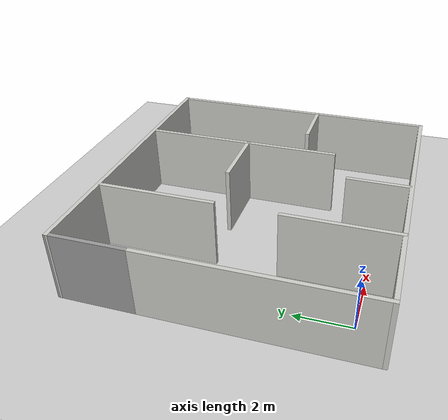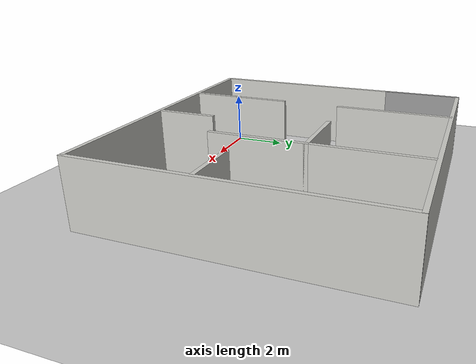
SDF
<sdf version="1.6">
 <world name="default">
  <light name="sun" type="directional">
   <pose>0 0 10 0 -0 0</pose>
   <diffuse>0.8 0.8 0.8 1</diffuse>
   <specular>0.2 0.2 0.2 1</specular>
   <attenuation>
    <range>1000</range>
    <constant>0.9</constant>
    <linear>0.01</linear>
    <quadratic>0.001</quadratic>
   </attenuation>
   <direction>-0.5 0.1 -0.9</direction>
  </light>
  <model name="ground_plane">
   <static>1</static>
   <link name="link">
    <collision name="collision">
     <geometry><plane><normal>0 0 1</normal><size>100 100</size></plane></geometry>
     <surface><friction><ode><mu>100</mu><mu2>50</mu2></ode></friction></surface>
    </collision>
    <visual name="visual">
     <cast_shadows>0</cast_shadows>
     <geometry><plane><normal>0 0 1</normal><size>100 100</size></plane></geometry>
     <material>
      <script><uri>file://media/materials/scripts/gazebo.material</uri><name>Gazebo/Grey</name></script>
     </material>
    </visual>
   </link>
  </model>
  <gravity>0 0 -9.8</gravity>
  <magnetic_field>6e-06 2.3e-05 -4.2e-05</magnetic_field>
  <atmosphere type="adiabatic"/>
  <physics name="default_physics" default="0" type="ode">
   <max_step_size>0.001</max_step_size>
   <real_time_factor>1</real_time_factor>
   <real_time_update_rate>1000</real_time_update_rate>
  </physics>
  <scene><ambient>0.4 0.4 0.4 1</ambient><background>0.7 0.7 0.7 1</background><shadows>1</shadows></scene>
  <audio><device>default</device></audio>
  <spherical_coordinates>
   <surface_model>EARTH_WGS84</surface_model>
   <latitude_deg>0</latitude_deg>
   <longitude_deg>0</longitude_deg>
   <elevation>0</elevation>
   <heading_deg>0</heading_deg>
  </spherical_coordinates>
  <model name="maze_map">
   <pose>4.15971 4.15583 0 0 -0 0</pose>
   <link name="Wall_73">
    <collision name="Wall_73_Collision">
     <geometry><box><size>7.75 0.15 2.5</size></box></geometry>
     <pose>0 0 1.25 0 -0 0</pose>
    </collision>
    <visual name="Wall_73_Visual">
     <pose>0 0 1.25 0 -0 0</pose>
     <geometry><box><size>7.75 0.15 2.5</size></box></geometry>
     <material>
      <script><uri>file://media/materials/scripts/gazebo.material</uri><name>Gazebo/CeilingTiled</name></script>
      <ambient>1 1 1 1</ambient>
     </material>
     <meta><layer>0</layer></meta>
    </visual>
    <pose>-5.39936 -1.37511 0 0 -0 1.5708</pose>
   </link>
   <link name="Wall_75">
    <collision name="Wall_75_Collision">
     <geometry><box><size>10.9263 0.15 2.5</size></box></geometry>
     <pose>0 0 1.25 0 -0 0</pose>
    </collision>
    <visual name="Wall_75_Visual">
     <pose>0 0 1.25 0 -0 0</pose>
     <geometry><box><size>10.9263 0.15 2.5</size></box></geometry>
     <material>
      <script><uri>file://media/materials/scripts/gazebo.material</uri><name>Gazebo/CeilingTiled</name></script>
      <ambient>1 1 1 1</ambient>
     </material>
     <meta><layer>0</layer></meta>
    </visual>
    <pose>-0.011229 -5.17416 0 0 -0 0.000176</pose>
   </link>
   <link name="Wall_76">
    <collision name="Wall_76_Collision">
     <geometry><box><size>10.4655 0.15 2.5</size></box></geometry>
     <pose>0 0 1.25 0 -0 0</pose>
    </collision>
    <visual name="Wall_76_Visual">
     <pose>0 0 1.25 0 -0 0</pose>
     <geometry><box><size>10.4655 0.15 2.5</size></box></geometry>
     <material>
      <script><uri>file://media/materials/scripts/gazebo.material</uri><name>Gazebo/CeilingTiled</name></script>
      <ambient>1 1 1 1</ambient>
     </material>
     <meta><layer>0</layer></meta>
    </visual>
    <pose>5.39959 -0.015463 0 0 -0 1.5708</pose>
   </link>
   <link name="Wall_78">
    <collision name="Wall_78_Collision">
     <geometry><box><size>10.9263 0.15 2.5</size></box></geometry>
     <pose>0 0 1.25 0 -0 0</pose>
    </collision>
    <visual name="Wall_78_Visual">
     <pose>0 0 1.25 0 -0 0</pose>
     <geometry><box><size>10.9263 0.15 2.5</size></box></geometry>
     <material>
      <script><uri>file://media/materials/scripts/gazebo.material</uri><name>Gazebo/CeilingTiled</name></script>
      <ambient>1 1 1 1</ambient>
     </material>
     <meta><layer>0</layer></meta>
    </visual>
    <pose>-0.011229 5.15859 0 0 -0 3.13857</pose>
   </link>
   <link name="Wall_79">
    <collision name="Wall_79_Collision">
     <geometry><box><size>3 0.15 2.5</size></box></geometry>
     <pose>0 0 1.25 0 -0 0</pose>
    </collision>
    <visual name="Wall_79_Visual">
     <pose>0 0 1.25 0 -0 0</pose>
     <geometry><box><size>3 0.15 2.5</size></box></geometry>
     <material>
      <script><uri>file://media/materials/scripts/gazebo.material</uri><name>Gazebo/Grey</name></script>
      <ambient>1 1 1 1</ambient>
     </material>
     <meta><layer>0</layer></meta>
    </visual>
    <pose>-5.39936 3.74989 0 0 -0 -1.5708</pose>
   </link>
   <link name="Wall_81">
    <collision name="Wall_81_Collision">
     <geometry><box><size>4 0.15 2.5</size></box></geometry>
     <pose>0 0 1.25 0 -0 0</pose>
    </collision>
    <visual name="Wall_81_Visual">
     <pose>0 0 1.25 0 -0 0</pose>
     <geometry><box><size>4 0.15 2.5</size></box></geometry>
     <material>
      <script><uri>file://media/materials/scripts/gazebo.material</uri><name>Gazebo/CeilingTiled</name></script>
      <ambient>1 1 1 1</ambient>
     </material>
     <meta><layer>0</layer></meta>
    </visual>
    <pose>-2.40145 -3.23008 0 0 -0 1.5708</pose>
   </link>
   <link name="Wall_84">
    <collision name="Wall_84_Collision">
     <geometry><box><size>4.25 0.15 2.5</size></box></geometry>
     <pose>0 0 1.25 0 -0 0</pose>
    </collision>
    <visual name="Wall_84_Visual">
     <pose>0 0 1.25 0 -0 0</pose>
     <geometry><box><size>4.25 0.15 2.5</size></box></geometry>
     <material>
      <script><uri>file://media/materials/scripts/gazebo.material</uri><name>Gazebo/CeilingTiled</name></script>
      <ambient>1 1 1 1</ambient>
     </material>
     <meta><layer>0</layer></meta>
    </visual>
    <pose>-2.36994 3.05976 0 0 -0 -1.5708</pose>
   </link>
   <link name="Wall_86">
    <collision name="Wall_86_Collision">
     <geometry><box><size>2.5 0.15 2.5</size></box></geometry>
     <pose>0 0 1.25 0 -0 0</pose>
    </collision>
    <visual name="Wall_86_Visual">
     <pose>0 0 1.25 0 -0 0</pose>
     <geometry><box><size>2.5 0.15 2.5</size></box></geometry>
     <material>
      <script><uri>file://media/materials/scripts/gazebo.material</uri><name>Gazebo/CeilingTiled</name></script>
      <ambient>1 1 1 1</ambient>
     </material>
     <meta><layer>0</layer></meta>
    </visual>
    <pose>0.830543 1.17305 0 0 -0 0</pose>
   </link>
   <link name="Wall_87">
    <collision name="Wall_87_Collision">
     <geometry><box><size>4 0.15 2.5</size></box></geometry>
     <pose>0 0 1.25 0 -0 0</pose>
    </collision>
    <visual name="Wall_87_Visual">
     <pose>0 0 1.25 0 -0 0</pose>
     <geometry><box><size>4 0.15 2.5</size></box></geometry>
     <material>
      <script><uri>file://media/materials/scripts/gazebo.material</uri><name>Gazebo/CeilingTiled</name></script>
      <ambient>1 1 1 1</ambient>
     </material>
     <meta><layer>0</layer></meta>
    </visual>
    <pose>2.00554 3.09806 0 0 -0 1.5708</pose>
   </link>
   <link name="Wall_93">
    <collision name="Wall_93_Collision">
     <geometry><box><size>3.5 0.15 2.5</size></box></geometry>
     <pose>0 0 1.25 0 -0 0</pose>
    </collision>
    <visual name="Wall_93_Visual">
     <pose>0 0 1.25 0 -0 0</pose>
     <geometry><box><size>3.5 0.15 2.5</size></box></geometry>
     <material>
      <script><uri>file://media/materials/scripts/gazebo.material</uri><name>Gazebo/CeilingTiled</name></script>
      <ambient>1 1 1 1</ambient>
     </material>
     <meta><layer>0</layer></meta>
    </visual>
    <pose>2.00554 -0.501945 0 0 -0 -1.5708</pose>
   </link>
   <link name="Wall_95">
    <collision name="Wall_95_Collision">
     <geometry><box><size>2.25 0.15 2.5</size></box></geometry>
     <pose>0 0 1.25 0 -0 0</pose>
    </collision>
    <visual name="Wall_95_Visual">
     <pose>0 0 1.25 0 -0 0</pose>
     <geometry><box><size>2.25 0.15 2.5</size></box></geometry>
     <material>
      <script><uri>file://media/materials/scripts/gazebo.material</uri><name>Gazebo/CeilingTiled</name></script>
      <ambient>1 1 1 1</ambient>
     </material>
     <meta><layer>0</layer></meta>
    </visual>
    <pose>0.416032 -4.03963 0 0 -0 1.5708</pose>
   </link>
   <link name="Wall_97">
    <collision name="Wall_97_Collision">
     <geometry><box><size>2 0.15 2.5</size></box></geometry>
     <pose>0 0 1.25 0 -0 0</pose>
    </collision>
    <visual name="Wall_97_Visual">
     <pose>0 0 1.25 0 -0 0</pose>
     <geometry><box><size>2 0.15 2.5</size></box></geometry>
     <material>
      <script><uri>file://media/materials/scripts/gazebo.material</uri><name>Gazebo/CeilingTiled</name></script>
      <ambient>1 1 1 1</ambient>
     </material>
     <meta><layer>0</layer></meta>
    </visual>
    <pose>4.36129 -0.870691 0 0 -0 3.14159</pose>
   </link>
   <static>1</static>
  </model>
  <model name="RoboCup SPL Ball">
   <static>0</static>
   <link name="ball">
    <inertial>
     <mass>0.0056</mass>
     <inertia>
      <ixx>2.37e-06</ixx>
      <iyy>2.37e-06</iyy>
      <izz>2.37e-06</izz>
      <ixy>0</ixy>
      <ixz>0</ixz>
      <iyz>0</iyz>
     </inertia>
    </inertial>
    <collision name="collision"><geometry><sphere><radius>0.289568</radius></sphere></geometry></collision>
    <visual name="visual">
     <geometry><sphere><radius>0.289568</radius></sphere></geometry>
     <material>
      <script><uri>file://media/materials/scripts/gazebo.material</uri><name>Gazebo/RedBright</name></script>
     </material>
    </visual>
   </link>
   <pose>7.34263 4.31097 0.289568 0 -0 0</pose>
  </model>
  <model name="mbot">
   <link name="base_footprint">
    <inertial>
     <pose>0.013077 0 0.138462 0 -0 0</pose>
     <mass>1.3</mass>
     <inertia>
      <ixx>0.0360561</ixx>
      <ixy>0</ixy>
      <ixz>-0.00121615</ixz>
      <iyy>0.0387238</iyy>
      <iyz>0</iyz>
      <izz>0.0426727</izz>
     </inertia>
    </inertial>
    <collision name="base_footprint_fixed_joint_lump__base_link_collision">
     <pose>0 0 0.11 0 -0 0</pose>
     <geometry><cylinder><length>0.16</length><radius>0.2</radius></cylinder></geometry>
    </collision>
    <collision name="base_footprint_fixed_joint_lump__camera_link_collision_1">
     <pose>0.17 0 0.21 0 -0 0</pose>
     <geometry><box><size>0.01 0.04 0.04</size></box></geometry>
    </collision>
    <collision name="base_footprint_fixed_joint_lump__pillar_link_collision_2">
     <pose>0 0 0.21 0 -0 0</pose>
     <geometry><cylinder><length>0.1</length><radius>0.01</radius></cylinder></geometry>
    </collision>
    <collision name="base_footprint_fixed_joint_lump__laser_link_collision_3">
     <pose>0 0 0.28 0 -0 0</pose>
     <geometry><cylinder><length>0.06</length><radius>0.05</radius></cylinder></geometry>
    </collision>
    <visual name="base_footprint_visual">
     <geometry><box><size>0.001 0.001 0.001</size></box></geometry>
     <material><script><uri>__default__</uri><name>__default__</name></script></material>
    </visual>
    <visual name="base_footprint_fixed_joint_lump__base_link_visual_1">
     <pose>0 0 0.11 0 -0 0</pose>
     <geometry><cylinder><length>0.16</length><radius>0.2</radius></cylinder></geometry>
     <material>
      <script><name>Gazebo/Blue</name><uri>file://media/materials/scripts/gazebo.material</uri></script>
     </material>
    </visual>
    <visual name="base_footprint_fixed_joint_lump__camera_link_visual_2">
     <pose>0.17 0 0.21 0 -0 0</pose>
     <geometry><box><size>0.01 0.04 0.04</size></box></geometry>
     <material>
      <script><name>Gazebo/Black</name><uri>file://media/materials/scripts/gazebo.material</uri></script>
     </material>
    </visual>
    <visual name="base_footprint_fixed_joint_lump__pillar_link_visual_3">
     <pose>0 0 0.21 0 -0 0</pose>
     <geometry><cylinder><length>0.1</length><radius>0.01</radius></cylinder></geometry>
    </visual>
    <visual name="base_footprint_fixed_joint_lump__laser_link_visual_4">
     <pose>0 0 0.28 0 -0 0</pose>
     <geometry><cylinder><length>0.05</length><radius>0.05</radius></cylinder></geometry>
     <material>
      <script><name>Gazebo/Black</name><uri>file://media/materials/scripts/gazebo.material</uri></script>
     </material>
    </visual>
    <sensor name="camera_node" type="camera">
     <update_rate>20</update_rate>
     <camera name="head">
      <horizontal_fov>1.39626</horizontal_fov>
      <image><width>1280</width><height>720</height><format>R8G8B8</format></image>
      <clip><near>0.02</near><far>300</far></clip>
      <noise><type>gaussian</type><mean>0</mean><stddev>0.007</stddev></noise>
     </camera>
     <plugin name="gazebo_camera" filename="libgazebo_ros_camera.so">
      <alwaysOn>1</alwaysOn>
      <updateRate>0.0</updateRate>
      <cameraName>/camera</cameraName>
      <imageTopicName>image_raw</imageTopicName>
      <cameraInfoTopicName>camera_info</cameraInfoTopicName>
      <frameName>camera_link</frameName>
      <hackBaseline>0.07</hackBaseline>
      <distortionK1>0.0</distortionK1>
      <distortionK2>0.0</distortionK2>
      <distortionK3>0.0</distortionK3>
      <distortionT1>0.0</distortionT1>
      <distortionT2>0.0</distortionT2>
      <robotNamespace>/</robotNamespace>
     </plugin>
     <pose>0.17 0 0.21 0 -0 0</pose>
    </sensor>
    <sensor name="rplidar" type="ray">
     <visualize>0</visualize>
     <update_rate>5.5</update_rate>
     <ray>
      <scan>
       <horizontal>
        <samples>360</samples>
        <resolution>1</resolution>
        <min_angle>-3</min_angle>
        <max_angle>3</max_angle>
       </horizontal>
       <vertical><samples>1</samples><min_angle>0</min_angle><max_angle>0</max_angle></vertical>
      </scan>
      <range><min>0.1</min><max>6</max><resolution>0.01</resolution></range>
      <noise><type>gaussian</type><mean>0</mean><stddev>0.01</stddev></noise>
     </ray>
     <plugin name="gazebo_rplidar" filename="libgazebo_ros_laser.so">
      <topicName>/scan</topicName>
      <frameName>laser_link</frameName>
      <robotNamespace>/</robotNamespace>
     </plugin>
     <pose>0 0 0.28 0 -0 0</pose>
    </sensor>
   </link>
   <link name="back_caster_link">
    <pose>0.18 0 0.015 0 -0 0</pose>
    <inertial>
     <mass>0.2</mass>
     <inertia><ixx>1.8e-05</ixx><ixy>0</ixy><ixz>0</ixz><iyy>1.8e-05</iyy><iyz>0</iyz><izz>1.8e-05</izz></inertia>
    </inertial>
    <collision name="back_caster_link_collision">
     <geometry><sphere><radius>0.015</radius></sphere></geometry>
    </collision>
    <visual name="back_caster_link_visual">
     <geometry><sphere><radius>0.015</radius></sphere></geometry>
     <material>
      <script><name>Gazebo/Black</name><uri>file://media/materials/scripts/gazebo.material</uri></script>
     </material>
    </visual>
   </link>
   <joint name="back_caster_joint" type="revolute">
    <child>back_caster_link</child>
    <parent>base_footprint</parent>
    <axis>
     <xyz>0 1 0</xyz>
     <limit><lower>-1e+16</lower><upper>1e+16</upper></limit>
     <dynamics><spring_reference>0</spring_reference><spring_stiffness>0</spring_stiffness></dynamics>
     <use_parent_model_frame>1</use_parent_model_frame>
    </axis>
   </joint>
   <link name="front_caster_link">
    <pose>-0.18 0 0.015 0 -0 0</pose>
    <inertial>
     <mass>0.2</mass>
     <inertia><ixx>1.8e-05</ixx><ixy>0</ixy><ixz>0</ixz><iyy>1.8e-05</iyy><iyz>0</iyz><izz>1.8e-05</izz></inertia>
    </inertial>
    <collision name="front_caster_link_collision">
     <geometry><sphere><radius>0.015</radius></sphere></geometry>
    </collision>
    <visual name="front_caster_link_visual">
     <geometry><sphere><radius>0.015</radius></sphere></geometry>
     <material>
      <script><name>Gazebo/Black</name><uri>file://media/materials/scripts/gazebo.material</uri></script>
     </material>
    </visual>
   </link>
   <joint name="front_caster_joint" type="revolute">
    <child>front_caster_link</child>
    <parent>base_footprint</parent>
    <axis>
     <xyz>0 1 0</xyz>
     <limit><lower>-1e+16</lower><upper>1e+16</upper></limit>
     <dynamics><spring_reference>0</spring_reference><spring_stiffness>0</spring_stiffness></dynamics>
     <use_parent_model_frame>1</use_parent_model_frame>
    </axis>
   </joint>
   <link name="left_wheel_link">
    <pose>0 0.19 0.06 0 -0 0</pose>
    <inertial>
     <mass>0.2</mass>
     <inertia>
      <ixx>0.000190417</ixx>
      <ixy>0</ixy>
      <ixz>0</ixz>
      <iyy>0.000190417</iyy>
      <iyz>0</iyz>
      <izz>0.00036</izz>
     </inertia>
    </inertial>
    <collision name="left_wheel_link_collision">
     <pose>0 0 0 1.5708 -0 0</pose>
     <geometry><cylinder><length>0.025</length><radius>0.06</radius></cylinder></geometry>
    </collision>
    <visual name="left_wheel_link_visual">
     <pose>0 0 0 1.5708 -0 0</pose>
     <geometry><cylinder><length>0.025</length><radius>0.06</radius></cylinder></geometry>
     <material>
      <script><name>Gazebo/Gray</name><uri>file://media/materials/scripts/gazebo.material</uri></script>
     </material>
    </visual>
   </link>
   <joint name="left_wheel_joint" type="revolute">
    <child>left_wheel_link</child>
    <parent>base_footprint</parent>
    <axis>
     <xyz>0 1 0</xyz>
     <limit><lower>-1e+16</lower><upper>1e+16</upper></limit>
     <dynamics><spring_reference>0</spring_reference><spring_stiffness>0</spring_stiffness></dynamics>
     <use_parent_model_frame>1</use_parent_model_frame>
    </axis>
   </joint>
   <link name="right_wheel_link">
    <pose>0 -0.19 0.06 0 -0 0</pose>
    <inertial>
     <mass>0.2</mass>
     <inertia>
      <ixx>0.000190417</ixx>
      <ixy>0</ixy>
      <ixz>0</ixz>
      <iyy>0.000190417</iyy>
      <iyz>0</iyz>
      <izz>0.00036</izz>
     </inertia>
    </inertial>
    <collision name="right_wheel_link_collision">
     <pose>0 0 0 1.5708 -0 0</pose>
     <geometry><cylinder><length>0.025</length><radius>0.06</radius></cylinder></geometry>
    </collision>
    <visual name="right_wheel_link_visual">
     <pose>0 0 0 1.5708 -0 0</pose>
     <geometry><cylinder><length>0.025</length><radius>0.06</radius></cylinder></geometry>
     <material>
      <script><name>Gazebo/Gray</name><uri>file://media/materials/scripts/gazebo.material</uri></script>
     </material>
    </visual>
   </link>
   <joint name="right_wheel_joint" type="revolute">
    <child>right_wheel_link</child>
    <parent>base_footprint</parent>
    <axis>
     <xyz>0 1 0</xyz>
     <limit><lower>-1e+16</lower><upper>1e+16</upper></limit>
     <dynamics><spring_reference>0</spring_reference><spring_stiffness>0</spring_stiffness></dynamics>
     <use_parent_model_frame>1</use_parent_model_frame>
    </axis>
   </joint>
   <static>0</static>
   <plugin name="differential_drive_controller" filename="libgazebo_ros_diff_drive.so">
    <rosDebugLevel>Debug</rosDebugLevel>
    <publishWheelTF>1</publishWheelTF>
    <robotNamespace>/</robotNamespace>
    <publishTf>1</publishTf>
    <publishWheelJointState>1</publishWheelJointState>
    <alwaysOn>1</alwaysOn>
    <updateRate>100.0</updateRate>
    <legacyMode>1</legacyMode>
    <leftJoint>left_wheel_joint</leftJoint>
    <rightJoint>right_wheel_joint</rightJoint>
    <wheelSeparation>0.38</wheelSeparation>
    <wheelDiameter>0.12</wheelDiameter>
    <broadcastTF>1</broadcastTF>
    <wheelTorque>30</wheelTorque>
    <wheelAcceleration>1.8</wheelAcceleration>
    <commandTopic>cmd_vel</commandTopic>
    <odometryFrame>odom</odometryFrame>
    <odometryTopic>odom</odometryTopic>
    <robotBaseFrame>base_footprint</robotBaseFrame>
   </plugin>
   <pose>0.016006 -0.016423 0 -1.7e-05 0 0.023358</pose>
  </model>
 </world>
</sdf>
